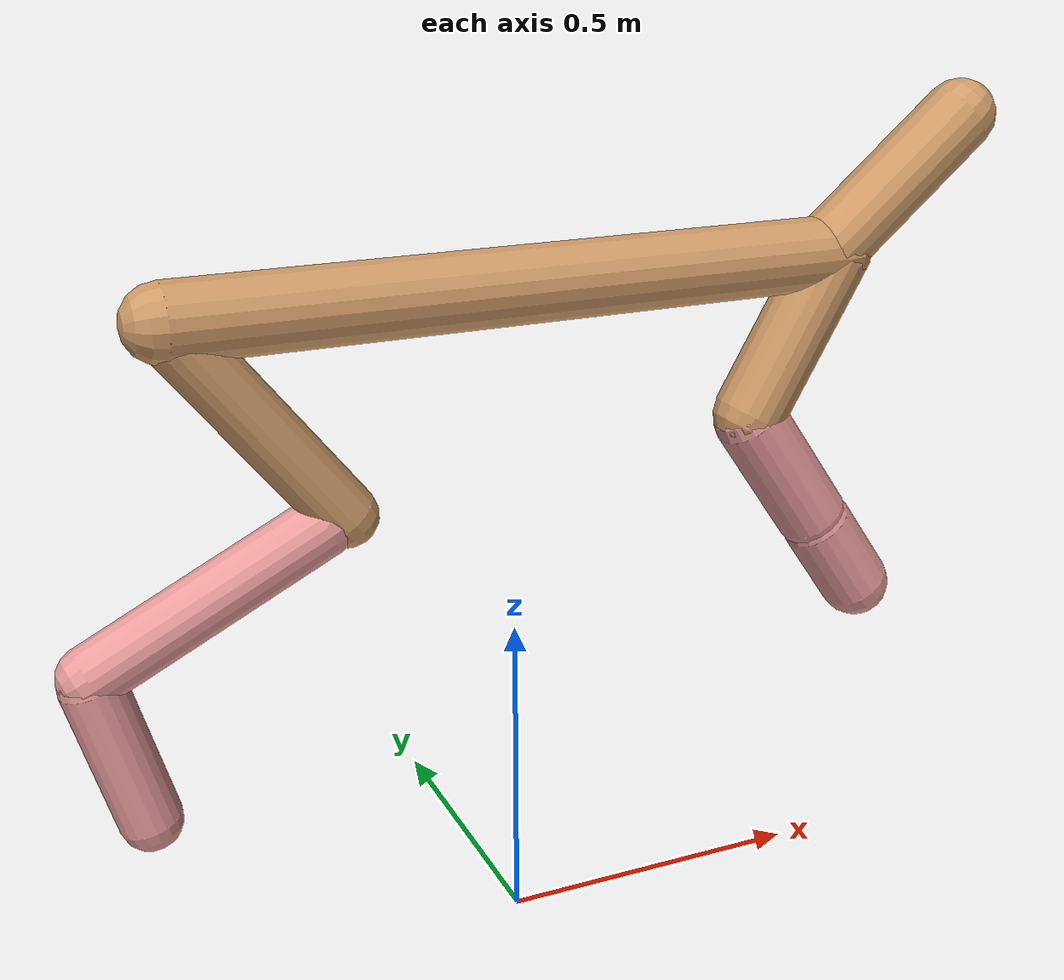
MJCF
<mujoco model="cheetah">
  <compiler angle="radian" coordinate="local" inertiafromgeom="true" settotalmass="14" />
  <default>
    <joint armature=".1" damping=".01" limited="true" solimplimit="0 .8 .03" solreflimit=".02 1" stiffness="8" />
    <geom conaffinity="0" condim="3" contype="1" friction="0.8 .1 .1" rgba="0.8 0.6 .4 1" solimp="0.0 0.8 0.01" solref="0.02 1" />
    <motor ctrllimited="true" ctrlrange="-1 1" />
  </default>
  <size nstack="300000" nuser_geom="1" />
  <option gravity="0 0 -9.81" timestep="0.01" />
  <worldbody>
    <body name="torso" pos="0.0 0.0 1.0402231182309">
      <joint armature="0" axis="1 0 0" damping="0" limited="false" name="ignorex" pos="0 0 0" stiffness="0" type="slide" />
      <joint armature="0" axis="0 0 1" damping="0" limited="false" name="ignorez" pos="0 0 0" stiffness="0" type="slide" />
      <joint armature="0" axis="0 1 0" damping="0" limited="false" name="ignorey" pos="0 0 0" stiffness="0" type="hinge" />
      <geom fromto="-0.5 0.0 0.0 0.5443545273080187 0.0 0.0" name="torso" size="0.0572015173227792" type="capsule" />
      <geom axisangle="0 1 0 .87" name="head" pos="0.6443545273080188 0.0 0.1" size="0.056975335100589275 0.15" type="capsule" />

      <body name="bthigh" pos="-.5 0 0">
        <joint axis="0 1 0" damping="6" name="bthigh" pos="0 0 0" range="-.52 1.05" stiffness="240" type="hinge" />
        <geom axisangle="0 1 0 -3.8" name="bthigh" pos="0.12549022538975124 0.0 -0.16313729300667662" size="0.047290971628911535 0.18680707808769534" type="capsule" />
        <body name="bshin" pos="0.21098045077950248 0.0 -0.31627458601335323">
          <joint axis="0 1 0" damping="4.5" name="bshin" pos="0 0 0" range="-.785 .785" stiffness="180" type="hinge" />
          <geom axisangle="0 1 0 -2.03" name="bshin" pos="-0.1786828145702326 0.0 -0.0893414072851163" rgba="0.9 0.6 0.6 1" size="0.047290971628911535 0.19324870147002968" type="capsule" />
          <body name="bfoot" pos="-0.3573656291404652 0.0 -0.1786828145702326">
            <joint axis="0 1 0" damping="3" name="bfoot" pos="0 0 0" range="-.4 .785" stiffness="120" type="hinge" />
            <geom axisangle="0 1 0 -.27" name="bfoot" pos="0.038007973953122366 0.0 -0.12289244911509567" rgba="0.9 0.6 0.6 1" size="0.047290971628911535 0.12110251958788527" type="capsule" />
            <inertial mass="10" />
          </body>
        </body>
      </body>
      <body name="fthigh" pos="0.5443545273080188 0.0 0.0">
        <joint axis="0 1 0" damping="4.5" name="fthigh" pos="0 0 0" range="-1.5 0.8" stiffness="180" type="hinge" />
        <geom axisangle="0 1 0 .52" name="fthigh" pos="-0.07318871264866394 0.0 -0.12546636454056675" size="0.05733673666906365 0.13932843026714486" type="capsule" />
        <body name="fshin" pos="-0.1463774252973279 0.0 -0.2509327290811335">
          <joint axis="0 1 0" damping="3" name="fshin" pos="0 0 0" range="-1.2 1.1" stiffness="120" type="hinge" />
          <geom axisangle="0 1 0 -.6" name="fshin" pos="0.06795304534631624 0.0 -0.09408883201797633" rgba="0.9 0.6 0.6 1" size="0.05733673666906365 0.11104371134073199" type="capsule" />
          <body name="ffoot" pos="0.1359060906926325 0.0 -0.18817766403595265">
            <joint axis="0 1 0" damping="1.5" name="ffoot" pos="0 0 0" range="-3.1 -0.3" stiffness="60" type="hinge" />
            <geom axisangle="0 1 0 -.6" name="ffoot" pos="0.04680112984634562 0.0 -0.07280175753875986" rgba="0.9 0.6 0.6 1" size="0.05733673666906365 0.07333075277218151" type="capsule" />
            <inertial mass="10" />
          </body>
        </body>
      </body>
    </body>
  </worldbody>
  <actuator>
    <motor gear="120" joint="bthigh" name="bthigh" />
    <motor gear="90" joint="bshin" name="bshin" />
    <motor gear="60" joint="bfoot" name="bfoot" />
    <motor gear="120" joint="fthigh" name="fthigh" />
    <motor gear="60" joint="fshin" name="fshin" />
    <motor gear="30" joint="ffoot" name="ffoot" />
  </actuator>
</mujoco>
